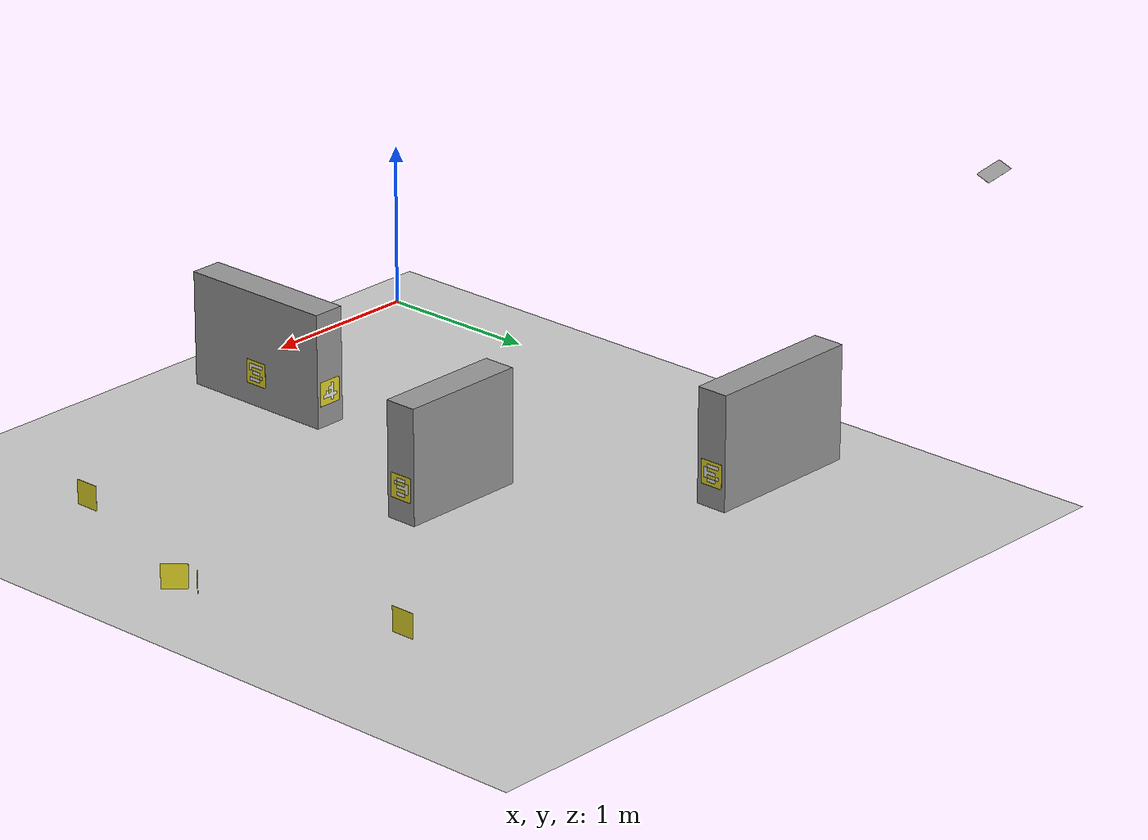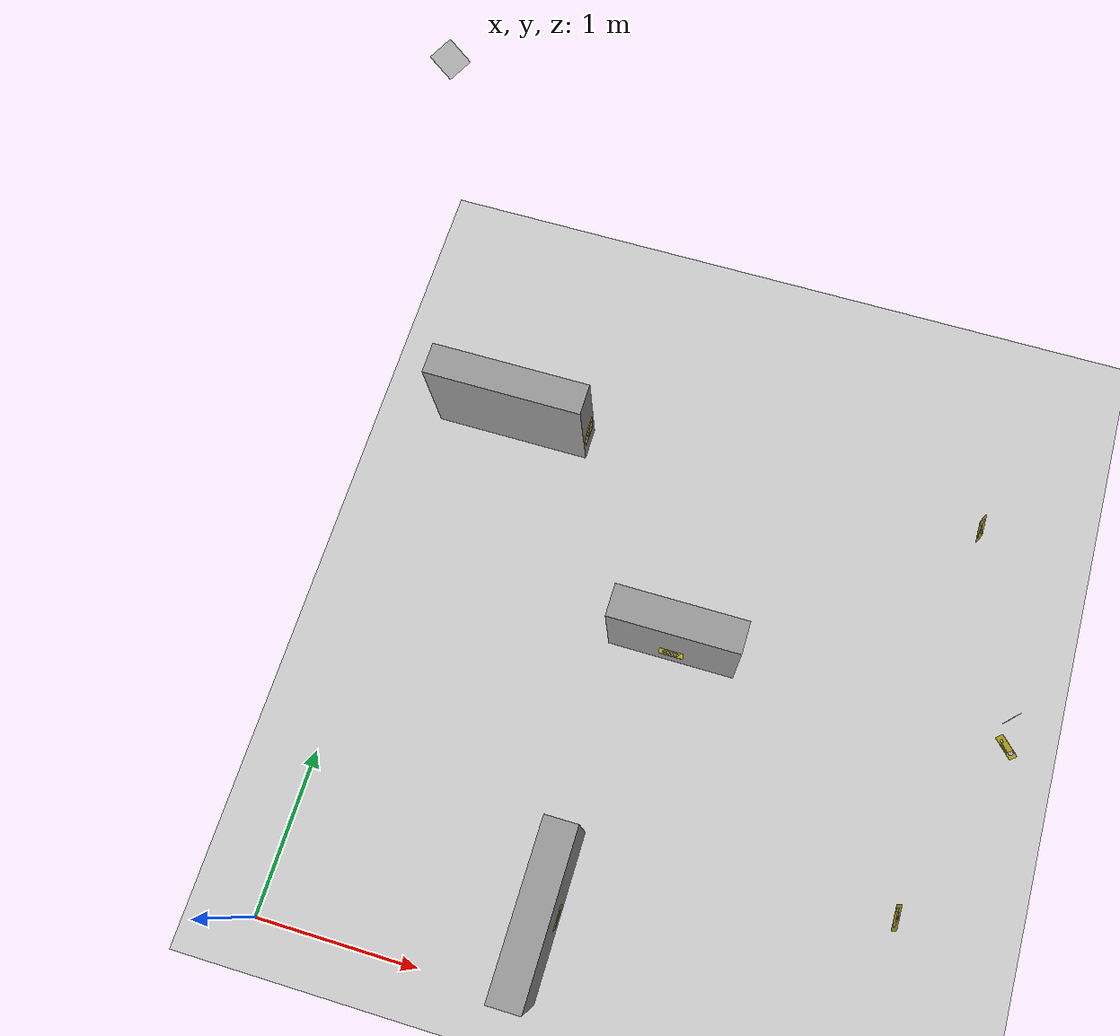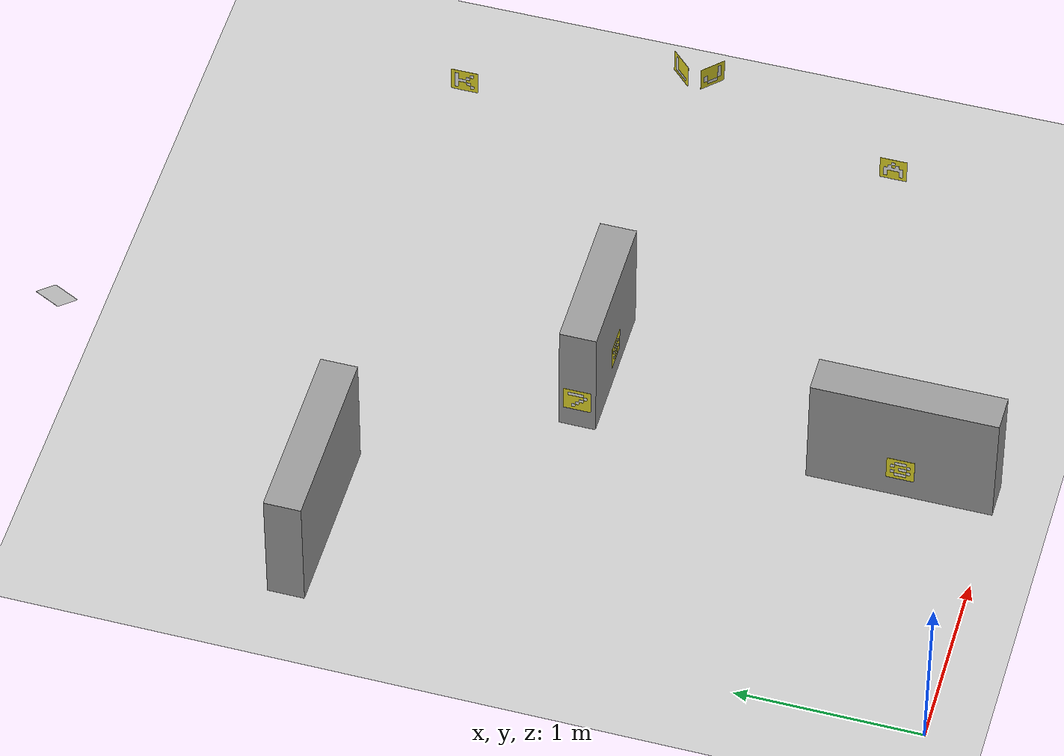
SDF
<sdf version="1.6">
 <world name="default">
  <model name="ground_plane">
   <static>1</static>
   <link name="link">
    <collision name="collision">
     <geometry><plane><normal>0 0 1</normal><size>100 100</size></plane></geometry>
     <surface><friction><ode><mu>100</mu><mu2>50</mu2></ode></friction></surface>
    </collision>
    <visual name="visual">
     <cast_shadows>0</cast_shadows>
     <geometry><plane><normal>0 0 1</normal><size>100 100</size></plane></geometry>
     <material>
      <script><uri>file://media/materials/scripts/gazebo.material</uri><name>Gazebo/Gray</name></script>
     </material>
    </visual>
   </link>
  </model>
  <model name="Untitled1">
   <pose>1.6 0.5 0 0 -0 0</pose>
   <link name="Wall_0">
    <collision name="Wall_0_Collision">
     <geometry><box><size>1 0.2 1</size></box></geometry>
     <pose>0 0 0.2 0 -0 0</pose>
    </collision>
    <visual name="Wall_0_Visual">
     <pose>0 0 0.2 0 -0 0</pose>
     <geometry><box><size>1 0.2 1</size></box></geometry>
     <material>
      <script><uri>file://media/materials/scripts/gazebo.material</uri><name>Gazebo/Gray</name></script>
      <ambient>1 1 1 1</ambient>
     </material>
     <meta><layer>0</layer></meta>
    </visual>
    <pose>0 0 0 0 -0 1.5708</pose>
   </link>
   <static>1</static>
  </model>
  <model name="Untitled1_clone_0">
   <pose>0.5 3.38 0 0 0 -1.5708</pose>
   <link name="Wall_0">
    <collision name="Wall_0_Collision">
     <geometry><box><size>1 0.2 1</size></box></geometry>
     <pose>0 0 0.2 0 -0 0</pose>
    </collision>
    <visual name="Wall_0_Visual">
     <pose>0 0 0.2 0 -0 0</pose>
     <geometry><box><size>1 0.2 1</size></box></geometry>
     <material>
      <script><uri>file://media/materials/scripts/gazebo.material</uri><name>Gazebo/Gray</name></script>
      <ambient>1 1 1 1</ambient>
     </material>
     <meta><layer>0</layer></meta>
    </visual>
    <pose>0 0 0 0 -0 1.5708</pose>
   </link>
   <static>1</static>
  </model>
  <model name="Untitled3">
   <pose>1.9 2.24 0 0 -0 0</pose>
   <link name="Wall_17">
    <collision name="Wall_17_Collision">
     <geometry><box><size>0.8 0.2 1</size></box></geometry>
     <pose>0 0 0.2 0 -0 0</pose>
    </collision>
    <visual name="Wall_17_Visual">
     <pose>0 0 0.2 0 -0 0</pose>
     <geometry><box><size>0.8 0.2 1</size></box></geometry>
     <material>
      <script><uri>file://media/materials/scripts/gazebo.material</uri><name>Gazebo/Gray</name></script>
      <ambient>1 1 1 1</ambient>
     </material>
     <meta><layer>0</layer></meta>
    </visual>
   </link>
   <static>1</static>
  </model>
  <model name="labal9">
   <link name="base">
    <inertial>
     <pose>-0.001086 -0.000137 -0.001593 0 -0 0</pose>
     <mass>0.0137688</mass>
     <inertia>
      <ixx>2.44128e-05</ixx>
      <ixy>-9.16282e-09</ixy>
      <ixz>4.39336e-07</ixz>
      <iyy>2.60674e-05</iyy>
      <iyz>-1.55543e-08</iyz>
      <izz>4.38445e-05</izz>
     </inertia>
    </inertial>
    <collision name="base_collision">
     <geometry>
      <mesh><scale>1 1 1</scale><uri>/home/tdt/catkin_ws/src/RoboRTS/small_car/meshes/base.STL</uri></mesh>
     </geometry>
    </collision>
    <collision name="base_fixed_joint_lump__labal9_collision_1">
     <pose>0 0 0 1.5708 -0 0</pose>
     <geometry>
      <mesh><scale>1 1 1</scale><uri>/home/tdt/catkin_ws/src/RoboRTS/small_car/meshes/labal9.STL</uri></mesh>
     </geometry>
    </collision>
    <visual name="base_visual">
     <geometry>
      <mesh><scale>1 1 1</scale><uri>/home/tdt/catkin_ws/src/RoboRTS/small_car/meshes/base.STL</uri></mesh>
     </geometry>
     <material>
      <script><name>Gazebo/Yellow</name><uri>file://media/materials/scripts/gazebo.material</uri></script>
     </material>
    </visual>
    <visual name="base_fixed_joint_lump__labal9_visual_1">
     <pose>0 0 0 1.5708 -0 0</pose>
     <geometry>
      <mesh><scale>1 1 1</scale><uri>/home/tdt/catkin_ws/src/RoboRTS/small_car/meshes/labal9.STL</uri></mesh>
     </geometry>
     <material>
      <script><name>Gazebo/White</name><uri>file://media/materials/scripts/gazebo.material</uri></script>
     </material>
    </visual>
   </link>
   <pose>2.3 2.24 0.2 0 -0 1.57</pose>
   <static>1</static>
  </model>
  <model name="labal5">
   <link name="base">
    <inertial>
     <pose>0.00033 -0.000348 -0.00107 0 -0 0</pose>
     <mass>0.0139978</mass>
     <inertia>
      <ixx>2.48566e-05</ixx>
      <ixy>1.85872e-09</ixy>
      <ixz>-5.95592e-09</ixz>
      <iyy>4.82541e-05</iyy>
      <iyz>-6.01782e-09</iyz>
      <izz>2.33991e-05</izz>
     </inertia>
    </inertial>
    <collision name="base_collision">
     <geometry>
      <mesh><scale>1 1 1</scale><uri>/home/tdt/catkin_ws/src/RoboRTS/small_car/meshes/base.STL</uri></mesh>
     </geometry>
    </collision>
    <collision name="base_fixed_joint_lump__labal5_collision_1">
     <pose>0 0 0 1.5708 -0 0</pose>
     <geometry>
      <mesh><scale>1 1 1</scale><uri>/home/tdt/catkin_ws/src/RoboRTS/small_car/meshes/labal5.STL</uri></mesh>
     </geometry>
    </collision>
    <visual name="base_visual">
     <geometry>
      <mesh><scale>1 1 1</scale><uri>/home/tdt/catkin_ws/src/RoboRTS/small_car/meshes/base.STL</uri></mesh>
     </geometry>
     <material>
      <script><name>Gazebo/Yellow</name><uri>file://media/materials/scripts/gazebo.material</uri></script>
     </material>
    </visual>
    <visual name="base_fixed_joint_lump__labal5_visual_1">
     <pose>0 0 0 1.5708 -0 0</pose>
     <geometry>
      <mesh><scale>1 1 1</scale><uri>/home/tdt/catkin_ws/src/RoboRTS/small_car/meshes/labal5.STL</uri></mesh>
     </geometry>
     <material>
      <script><name>Gazebo/White</name><uri>file://media/materials/scripts/gazebo.material</uri></script>
     </material>
    </visual>
   </link>
   <pose>1.7 0.5 0.2 0 -0 1.57</pose>
   <static>1</static>
  </model>
  <model name="labal3">
   <link name="base">
    <inertial>
     <pose>-0.001086 -0.000137 -0.001593 0 -0 0</pose>
     <mass>0.0137688</mass>
     <inertia>
      <ixx>2.44128e-05</ixx>
      <ixy>-9.16282e-09</ixy>
      <ixz>4.39336e-07</ixz>
      <iyy>2.60674e-05</iyy>
      <iyz>-1.55543e-08</iyz>
      <izz>4.38445e-05</izz>
     </inertia>
    </inertial>
    <collision name="base_collision">
     <geometry>
      <mesh><scale>1 1 1</scale><uri>/home/tdt/catkin_ws/src/RoboRTS/small_car/meshes/base.STL</uri></mesh>
     </geometry>
    </collision>
    <collision name="base_fixed_joint_lump__labal3_collision_1">
     <pose>0 0 0 1.5708 -0 0</pose>
     <geometry>
      <mesh><scale>1 1 1</scale><uri>/home/tdt/catkin_ws/src/RoboRTS/small_car/meshes/labal3.STL</uri></mesh>
     </geometry>
    </collision>
    <visual name="base_visual">
     <geometry>
      <mesh><scale>1 1 1</scale><uri>/home/tdt/catkin_ws/src/RoboRTS/small_car/meshes/base.STL</uri></mesh>
     </geometry>
     <material>
      <script><name>Gazebo/Yellow</name><uri>file://media/materials/scripts/gazebo.material</uri></script>
     </material>
    </visual>
    <visual name="base_fixed_joint_lump__labal3_visual_1">
     <pose>0 0 0 1.5708 -0 0</pose>
     <geometry>
      <mesh><scale>1 1 1</scale><uri>/home/tdt/catkin_ws/src/RoboRTS/small_car/meshes/labal3.STL</uri></mesh>
     </geometry>
     <material>
      <script><name>Gazebo/White</name><uri>file://media/materials/scripts/gazebo.material</uri></script>
     </material>
    </visual>
   </link>
   <pose>1.5 0.5 0.2 0 0 -1.57</pose>
   <static>1</static>
  </model>
  <model name="labal7">
   <link name="base">
    <inertial>
     <pose>-0.001086 -0.000137 -0.001593 0 -0 0</pose>
     <mass>0.0137688</mass>
     <inertia>
      <ixx>2.44128e-05</ixx>
      <ixy>-9.16282e-09</ixy>
      <ixz>4.39336e-07</ixz>
      <iyy>2.60674e-05</iyy>
      <iyz>-1.55543e-08</iyz>
      <izz>4.38445e-05</izz>
     </inertia>
    </inertial>
    <collision name="base_collision">
     <geometry>
      <mesh><scale>1 1 1</scale><uri>/home/tdt/catkin_ws/src/RoboRTS/small_car/meshes/base.STL</uri></mesh>
     </geometry>
    </collision>
    <collision name="base_fixed_joint_lump__labal7_collision_1">
     <pose>0 0 0 1.5708 -0 0</pose>
     <geometry>
      <mesh><scale>1 1 1</scale><uri>/home/tdt/catkin_ws/src/RoboRTS/small_car/meshes/labal7.STL</uri></mesh>
     </geometry>
    </collision>
    <visual name="base_visual">
     <geometry>
      <mesh><scale>1 1 1</scale><uri>/home/tdt/catkin_ws/src/RoboRTS/small_car/meshes/base.STL</uri></mesh>
     </geometry>
     <material>
      <script><name>Gazebo/Yellow</name><uri>file://media/materials/scripts/gazebo.material</uri></script>
     </material>
    </visual>
    <visual name="base_fixed_joint_lump__labal7_visual_1">
     <pose>0 0 0 1.5708 -0 0</pose>
     <geometry>
      <mesh><scale>1 1 1</scale><uri>/home/tdt/catkin_ws/src/RoboRTS/small_car/meshes/labal7.STL</uri></mesh>
     </geometry>
     <material>
      <script><name>Gazebo/White</name><uri>file://media/materials/scripts/gazebo.material</uri></script>
     </material>
    </visual>
   </link>
   <pose>1.5 2.24 0.2 0 0 -1.57</pose>
   <static>1</static>
  </model>
  <model name="labal4">
   <link name="base">
    <inertial>
     <pose>0.00033 -0.000348 -0.00107 0 -0 0</pose>
     <mass>0.0139978</mass>
     <inertia>
      <ixx>2.48566e-05</ixx>
      <ixy>1.85872e-09</ixy>
      <ixz>-5.95592e-09</ixz>
      <iyy>4.82541e-05</iyy>
      <iyz>-6.01782e-09</iyz>
      <izz>2.33991e-05</izz>
     </inertia>
    </inertial>
    <collision name="base_collision">
     <geometry>
      <mesh><scale>1 1 1</scale><uri>/home/tdt/catkin_ws/src/RoboRTS/small_car/meshes/base.STL</uri></mesh>
     </geometry>
    </collision>
    <collision name="base_fixed_joint_lump__labal4_collision_1">
     <pose>0 0 0 1.5708 -0 0</pose>
     <geometry>
      <mesh><scale>1 1 1</scale><uri>/home/tdt/catkin_ws/src/RoboRTS/small_car/meshes/labal4.STL</uri></mesh>
     </geometry>
    </collision>
    <visual name="base_visual">
     <geometry>
      <mesh><scale>1 1 1</scale><uri>/home/tdt/catkin_ws/src/RoboRTS/small_car/meshes/base.STL</uri></mesh>
     </geometry>
     <material>
      <script><name>Gazebo/Yellow</name><uri>file://media/materials/scripts/gazebo.material</uri></script>
     </material>
    </visual>
    <visual name="base_fixed_joint_lump__labal4_visual_1">
     <pose>0 0 0 1.5708 -0 0</pose>
     <geometry>
      <mesh><scale>1 1 1</scale><uri>/home/tdt/catkin_ws/src/RoboRTS/small_car/meshes/labal4.STL</uri></mesh>
     </geometry>
     <material>
      <script><name>Gazebo/White</name><uri>file://media/materials/scripts/gazebo.material</uri></script>
     </material>
    </visual>
   </link>
   <pose>1.6 1 0.2 0 -0 3.14</pose>
   <static>1</static>
  </model>
  <model name="labal6">
   <link name="base">
    <inertial>
     <pose>-0.001086 -0.000137 -0.001593 0 -0 0</pose>
     <mass>0.0137688</mass>
     <inertia>
      <ixx>2.44128e-05</ixx>
      <ixy>-9.16282e-09</ixy>
      <ixz>4.39336e-07</ixz>
      <iyy>2.60674e-05</iyy>
      <iyz>-1.55543e-08</iyz>
      <izz>4.38445e-05</izz>
     </inertia>
    </inertial>
    <collision name="base_collision">
     <geometry>
      <mesh><scale>1 1 1</scale><uri>/home/tdt/catkin_ws/src/RoboRTS/small_car/meshes/base.STL</uri></mesh>
     </geometry>
    </collision>
    <collision name="base_fixed_joint_lump__labal6_collision_1">
     <pose>0 0 0 1.5708 -0 0</pose>
     <geometry>
      <mesh><scale>1 1 1</scale><uri>/home/tdt/catkin_ws/src/RoboRTS/small_car/meshes/labal6.STL</uri></mesh>
     </geometry>
    </collision>
    <visual name="base_visual">
     <geometry>
      <mesh><scale>1 1 1</scale><uri>/home/tdt/catkin_ws/src/RoboRTS/small_car/meshes/base.STL</uri></mesh>
     </geometry>
     <material>
      <script><name>Gazebo/Yellow</name><uri>file://media/materials/scripts/gazebo.material</uri></script>
     </material>
    </visual>
    <visual name="base_fixed_joint_lump__labal6_visual_1">
     <pose>0 0 0 1.5708 -0 0</pose>
     <geometry>
      <mesh><scale>1 1 1</scale><uri>/home/tdt/catkin_ws/src/RoboRTS/small_car/meshes/labal6.STL</uri></mesh>
     </geometry>
     <material>
      <script><name>Gazebo/White</name><uri>file://media/materials/scripts/gazebo.material</uri></script>
     </material>
    </visual>
   </link>
   <pose>1 3.38 0.2 0 -0 1.57</pose>
   <static>1</static>
  </model>
  <model name="labal8">
   <link name="base">
    <inertial>
     <pose>-0.001086 -0.000137 -0.001593 0 -0 0</pose>
     <mass>0.0137688</mass>
     <inertia>
      <ixx>2.44128e-05</ixx>
      <ixy>-9.16282e-09</ixy>
      <ixz>4.39336e-07</ixz>
      <iyy>2.60674e-05</iyy>
      <iyz>-1.55543e-08</iyz>
      <izz>4.38445e-05</izz>
     </inertia>
    </inertial>
    <collision name="base_collision">
     <geometry>
      <mesh><scale>1 1 1</scale><uri>/home/tdt/catkin_ws/src/RoboRTS/small_car/meshes/base.STL</uri></mesh>
     </geometry>
    </collision>
    <collision name="base_fixed_joint_lump__labal8_collision_1">
     <pose>0 0 0 1.5708 -0 0</pose>
     <geometry>
      <mesh><scale>1 1 1</scale><uri>/home/tdt/catkin_ws/src/RoboRTS/small_car/meshes/labal8.STL</uri></mesh>
     </geometry>
    </collision>
    <visual name="base_visual">
     <geometry>
      <mesh><scale>1 1 1</scale><uri>/home/tdt/catkin_ws/src/RoboRTS/small_car/meshes/base.STL</uri></mesh>
     </geometry>
     <material>
      <script><name>Gazebo/Yellow</name><uri>file://media/materials/scripts/gazebo.material</uri></script>
     </material>
    </visual>
    <visual name="base_fixed_joint_lump__labal8_visual_1">
     <pose>0 0 0 1.5708 -0 0</pose>
     <geometry>
      <mesh><scale>1 1 1</scale><uri>/home/tdt/catkin_ws/src/RoboRTS/small_car/meshes/labal8.STL</uri></mesh>
     </geometry>
     <material>
      <script><name>Gazebo/White</name><uri>file://media/materials/scripts/gazebo.material</uri></script>
     </material>
    </visual>
   </link>
   <pose>1.9 2.14 0.2 0 -0 0</pose>
   <static>1</static>
  </model>
  <model name="labal_A">
   <link name="base">
    <inertial>
     <pose>-0.001086 -0.000137 -0.001593 0 -0 0</pose>
     <mass>0.0137688</mass>
     <inertia>
      <ixx>2.44128e-05</ixx>
      <ixy>-9.16282e-09</ixy>
      <ixz>4.39336e-07</ixz>
      <iyy>2.60674e-05</iyy>
      <iyz>-1.55543e-08</iyz>
      <izz>4.38445e-05</izz>
     </inertia>
    </inertial>
    <collision name="base_collision">
     <geometry>
      <mesh><scale>1 1 1</scale><uri>/home/tdt/catkin_ws/src/RoboRTS/small_car/meshes/base.STL</uri></mesh>
     </geometry>
    </collision>
    <collision name="base_fixed_joint_lump__labal_A_collision_1">
     <pose>0 0 0 1.5708 -0 0</pose>
     <geometry>
      <mesh><scale>1 1 1</scale><uri>/home/tdt/catkin_ws/src/RoboRTS/small_car/meshes/labal_A.STL</uri></mesh>
     </geometry>
    </collision>
    <visual name="base_visual">
     <geometry>
      <mesh><scale>1 1 1</scale><uri>/home/tdt/catkin_ws/src/RoboRTS/small_car/meshes/base.STL</uri></mesh>
     </geometry>
     <material>
      <script><name>Gazebo/Yellow</name><uri>file://media/materials/scripts/gazebo.material</uri></script>
     </material>
    </visual>
    <visual name="base_fixed_joint_lump__labal_A_visual_1">
     <pose>0 0 0 1.5708 -0 0</pose>
     <geometry>
      <mesh><scale>1 1 1</scale><uri>/home/tdt/catkin_ws/src/RoboRTS/small_car/meshes/labal_A.STL</uri></mesh>
     </geometry>
     <material>
      <script><name>Gazebo/White</name><uri>file://media/materials/scripts/gazebo.material</uri></script>
     </material>
    </visual>
   </link>
   <pose>3.54 1.035 0.2 0 0 -1.57</pose>
   <static>1</static>
  </model>
  <model name="labal_J">
   <link name="base">
    <inertial>
     <pose>-0.001086 -0.000137 -0.001593 0 -0 0</pose>
     <mass>0.0137688</mass>
     <inertia>
      <ixx>2.44128e-05</ixx>
      <ixy>-9.16282e-09</ixy>
      <ixz>4.39336e-07</ixz>
      <iyy>2.60674e-05</iyy>
      <iyz>-1.55543e-08</iyz>
      <izz>4.38445e-05</izz>
     </inertia>
    </inertial>
    <collision name="base_collision">
     <geometry>
      <mesh><scale>1 1 1</scale><uri>/home/tdt/catkin_ws/src/RoboRTS/small_car/meshes/base.STL</uri></mesh>
     </geometry>
    </collision>
    <collision name="base_fixed_joint_lump__labal_J_collision_1">
     <pose>0 0 0 1.5708 -0 0</pose>
     <geometry>
      <mesh><scale>1 1 1</scale><uri>/home/tdt/catkin_ws/src/RoboRTS/small_car/meshes/labal_J.STL</uri></mesh>
     </geometry>
    </collision>
    <visual name="base_visual">
     <geometry>
      <mesh><scale>1 1 1</scale><uri>/home/tdt/catkin_ws/src/RoboRTS/small_car/meshes/base.STL</uri></mesh>
     </geometry>
     <material>
      <script><name>Gazebo/Yellow</name><uri>file://media/materials/scripts/gazebo.material</uri></script>
     </material>
    </visual>
    <visual name="base_fixed_joint_lump__labal_J_visual_1">
     <pose>0 0 0 1.5708 -0 0</pose>
     <geometry>
      <mesh><scale>1 1 1</scale><uri>/home/tdt/catkin_ws/src/RoboRTS/small_car/meshes/labal_J.STL</uri></mesh>
     </geometry>
     <material>
      <script><name>Gazebo/White</name><uri>file://media/materials/scripts/gazebo.material</uri></script>
     </material>
    </visual>
   </link>
   <pose>3.95 2.152 0.2 0 0 -0.785</pose>
   <static>1</static>
  </model>
  <model name="labal_L">
   <link name="base">
    <inertial>
     <pose>-0.001086 -0.000137 -0.001593 0 -0 0</pose>
     <mass>0.0137688</mass>
     <inertia>
      <ixx>2.44128e-05</ixx>
      <ixy>-9.16282e-09</ixy>
      <ixz>4.39336e-07</ixz>
      <iyy>2.60674e-05</iyy>
      <iyz>-1.55543e-08</iyz>
      <izz>4.38445e-05</izz>
     </inertia>
    </inertial>
    <collision name="base_collision">
     <geometry>
      <mesh><scale>1 1 1</scale><uri>/home/tdt/catkin_ws/src/RoboRTS/small_car/meshes/base.STL</uri></mesh>
     </geometry>
    </collision>
    <collision name="base_fixed_joint_lump__labal_L_collision_1">
     <pose>0 0 0 1.5708 -0 0</pose>
     <geometry>
      <mesh><scale>1 1 1</scale><uri>/home/tdt/catkin_ws/src/RoboRTS/small_car/meshes/labal_L.STL</uri></mesh>
     </geometry>
    </collision>
    <visual name="base_visual">
     <geometry>
      <mesh><scale>1 1 1</scale><uri>/home/tdt/catkin_ws/src/RoboRTS/small_car/meshes/base.STL</uri></mesh>
     </geometry>
     <material>
      <script><name>Gazebo/Yellow</name><uri>file://media/materials/scripts/gazebo.material</uri></script>
     </material>
    </visual>
    <visual name="base_fixed_joint_lump__labal_L_visual_1">
     <pose>0 0 0 1.5708 -0 0</pose>
     <geometry>
      <mesh><scale>1 1 1</scale><uri>/home/tdt/catkin_ws/src/RoboRTS/small_car/meshes/labal_L.STL</uri></mesh>
     </geometry>
     <material>
      <script><name>Gazebo/White</name><uri>file://media/materials/scripts/gazebo.material</uri></script>
     </material>
    </visual>
   </link>
   <pose>3.95 2.328 0.2 0 0 -2.355</pose>
   <static>1</static>
  </model>
  <model name="labal_K">
   <link name="base">
    <inertial>
     <pose>-0.001086 -0.000137 -0.001593 0 -0 0</pose>
     <mass>0.0137688</mass>
     <inertia>
      <ixx>2.44128e-05</ixx>
      <ixy>-9.16282e-09</ixy>
      <ixz>4.39336e-07</ixz>
      <iyy>2.60674e-05</iyy>
      <iyz>-1.55543e-08</iyz>
      <izz>4.38445e-05</izz>
     </inertia>
    </inertial>
    <collision name="base_collision">
     <geometry>
      <mesh><scale>1 1 1</scale><uri>/home/tdt/catkin_ws/src/RoboRTS/small_car/meshes/base.STL</uri></mesh>
     </geometry>
    </collision>
    <collision name="base_fixed_joint_lump__labal_K_collision_1">
     <pose>0 0 0 1.5708 -0 0</pose>
     <geometry>
      <mesh><scale>1 1 1</scale><uri>/home/tdt/catkin_ws/src/RoboRTS/small_car/meshes/labal_K.STL</uri></mesh>
     </geometry>
    </collision>
    <visual name="base_visual">
     <geometry>
      <mesh><scale>1 1 1</scale><uri>/home/tdt/catkin_ws/src/RoboRTS/small_car/meshes/base.STL</uri></mesh>
     </geometry>
     <material>
      <script><name>Gazebo/Yellow</name><uri>file://media/materials/scripts/gazebo.material</uri></script>
     </material>
    </visual>
    <visual name="base_fixed_joint_lump__labal_K_visual_1">
     <pose>0 0 0 1.5708 -0 0</pose>
     <geometry>
      <mesh><scale>1 1 1</scale><uri>/home/tdt/catkin_ws/src/RoboRTS/small_car/meshes/labal_K.STL</uri></mesh>
     </geometry>
     <material>
      <script><name>Gazebo/White</name><uri>file://media/materials/scripts/gazebo.material</uri></script>
     </material>
    </visual>
   </link>
   <pose>3.54 3.445 0.2 0 0 -1.57</pose>
   <static>1</static>
  </model>
  <model name="sentry">
   <link name="sentry">
    <inertial>
     <pose>0.050669 -0.050669 2 0 -0 0</pose>
     <mass>1.1807</mass>
     <inertia>
      <ixx>0.52915</ixx>
      <ixy>-0.0019526</ixy>
      <ixz>0.03191</ixz>
      <iyy>0.52915</iyy>
      <iyz>0.03191</iyz>
      <izz>0.027533</izz>
     </inertia>
    </inertial>
    <collision name="sentry_collision">
     <pose>0 0 0 1.5708 -0 0</pose>
     <geometry>
      <mesh><scale>1 1 1</scale><uri>/home/tdt/catkin_ws/src/RoboRTS/small_car/meshes/base.STL</uri></mesh>
     </geometry>
    </collision>
    <visual name="sentry_visual">
     <pose>0 0 0 1.5708 -0 0</pose>
     <geometry>
      <mesh><scale>1 1 1</scale><uri>/home/tdt/catkin_ws/src/RoboRTS/small_car/meshes/base.STL</uri></mesh>
     </geometry>
     <material><script><uri>__default__</uri><name>__default__</name></script></material>
    </visual>
    <sensor name="camera1" type="depth">
     <update_rate>100</update_rate>
     <camera name="back_camera">
      <horizontal_fov>0.9</horizontal_fov>
      <image><width>1440</width><height>1080</height><format>R8G8B8</format></image>
      <clip><near>0.1</near><far>100</far></clip>
      <noise><type>gaussian</type><mean>0</mean><stddev>0.007</stddev></noise>
     </camera>
     <plugin name="camera_controller" filename="libgazebo_ros_openni_kinect.so">
      <alwaysOn>true</alwaysOn>
      <updateRate>100</updateRate>
      <cameraName>back_camera</cameraName>
      <frameName>sentry</frameName>
      <imageTopicName>image_raw</imageTopicName>
      <cameraInfoTopicName>camera_info</cameraInfoTopicName>
      <hackBaseline>0.07</hackBaseline>
      <distortionK1>0.0</distortionK1>
      <distortionK2>0.0</distortionK2>
      <distortionK3>0.0</distortionK3>
      <distortionT1>0.0</distortionT1>
      <distortionT2>0.0</distortionT2>
      <robotNamespace>/</robotNamespace>
     </plugin>
    </sensor>
   </link>
   <pose>-0.02 4.5 2 -1e-06 0.45 -0.45</pose>
   <static>1</static>
  </model>
 </world>
</sdf>
